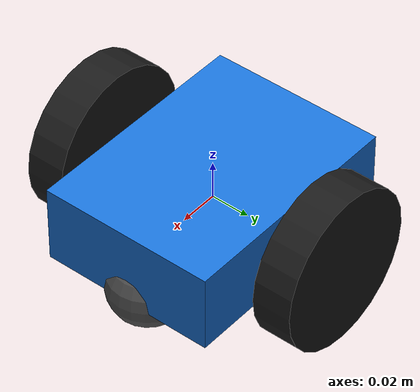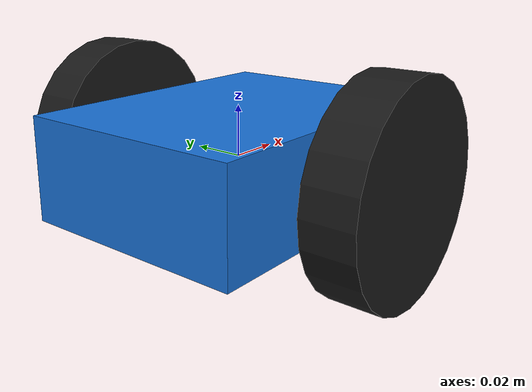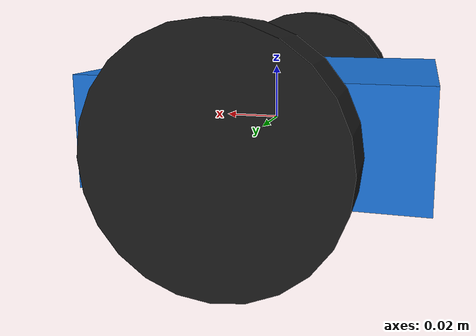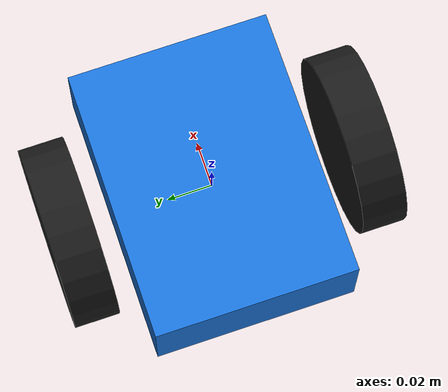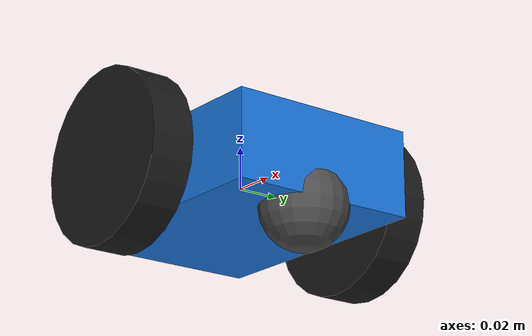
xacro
<?xml version="1.0"?>
<robot name="micromouse" xmlns:xacro="http://www.ros.org/wiki/xacro">

  <!-- A small differential-drive robot sized to fit a 0.30 m maze cell.
       wheel_radius=0.04, wheel_separation=0.13. Spawn at z=0.04 so the
       wheels rest on the ground. -->

  <link name="base_link">
    <visual>
      <geometry><box size="0.12 0.09 0.04"/></geometry>
      <material name="body"><color rgba="0.10 0.45 0.85 1"/></material>
    </visual>
    <collision>
      <geometry><box size="0.12 0.09 0.04"/></geometry>
    </collision>
    <inertial>
      <mass value="0.6"/>
      <inertia ixx="0.000485" ixy="0" ixz="0"
               iyy="0.0008" iyz="0" izz="0.001125"/>
    </inertial>
  </link>

  <!-- left wheel (+y) -->
  <link name="left_wheel">
    <visual>
      <origin rpy="1.5708 0 0" xyz="0 0 0"/>
      <geometry><cylinder length="0.02" radius="0.04"/></geometry>
      <material name="wheel"><color rgba="0.1 0.1 0.1 1"/></material>
    </visual>
    <collision>
      <origin rpy="1.5708 0 0" xyz="0 0 0"/>
      <geometry><cylinder length="0.02" radius="0.04"/></geometry>
    </collision>
    <inertial>
      <mass value="0.05"/>
      <inertia ixx="0.000022" ixy="0" ixz="0"
               iyy="0.00004" iyz="0" izz="0.000022"/>
    </inertial>
  </link>
  <joint name="left_wheel_joint" type="continuous">
    <parent link="base_link"/>
    <child link="left_wheel"/>
    <origin xyz="0 0.065 0" rpy="0 0 0"/>
    <axis xyz="0 1 0"/>
  </joint>

  <!-- right wheel (-y) -->
  <link name="right_wheel">
    <visual>
      <origin rpy="1.5708 0 0" xyz="0 0 0"/>
      <geometry><cylinder length="0.02" radius="0.04"/></geometry>
      <material name="wheel"><color rgba="0.1 0.1 0.1 1"/></material>
    </visual>
    <collision>
      <origin rpy="1.5708 0 0" xyz="0 0 0"/>
      <geometry><cylinder length="0.02" radius="0.04"/></geometry>
    </collision>
    <inertial>
      <mass value="0.05"/>
      <inertia ixx="0.000022" ixy="0" ixz="0"
               iyy="0.00004" iyz="0" izz="0.000022"/>
    </inertial>
  </link>
  <joint name="right_wheel_joint" type="continuous">
    <parent link="base_link"/>
    <child link="right_wheel"/>
    <origin xyz="0 -0.065 0" rpy="0 0 0"/>
    <axis xyz="0 1 0"/>
  </joint>

  <!-- front caster (frictionless ball) -->
  <link name="caster">
    <visual>
      <geometry><sphere radius="0.02"/></geometry>
      <material name="caster"><color rgba="0.3 0.3 0.3 1"/></material>
    </visual>
    <collision>
      <geometry><sphere radius="0.02"/></geometry>
    </collision>
    <inertial>
      <mass value="0.02"/>
      <inertia ixx="0.000003" ixy="0" ixz="0"
               iyy="0.000003" iyz="0" izz="0.000003"/>
    </inertial>
  </link>
  <joint name="caster_joint" type="fixed">
    <parent link="base_link"/>
    <child link="caster"/>
    <origin xyz="0.045 0 -0.02" rpy="0 0 0"/>
  </joint>

  <!-- gz friction: grippy wheels, slippery caster -->
  <gazebo reference="left_wheel">
    <mu1>1.0</mu1><mu2>1.0</mu2>
  </gazebo>
  <gazebo reference="right_wheel">
    <mu1>1.0</mu1><mu2>1.0</mu2>
  </gazebo>
  <gazebo reference="caster">
    <mu1>0.0</mu1><mu2>0.0</mu2>
  </gazebo>

  <!-- gz systems -->
  <gazebo>
    <plugin filename="gz-sim-diff-drive-system"
            name="gz::sim::systems::DiffDrive">
      <left_joint>left_wheel_joint</left_joint>
      <right_joint>right_wheel_joint</right_joint>
      <wheel_separation>0.13</wheel_separation>
      <wheel_radius>0.04</wheel_radius>
      <odom_publish_frequency>50</odom_publish_frequency>
      <topic>/cmd_vel</topic>
      <odom_topic>/odom</odom_topic>
      <tf_topic>/tf</tf_topic>
      <frame_id>odom</frame_id>
      <child_frame_id>base_link</child_frame_id>
      <max_linear_acceleration>3.0</max_linear_acceleration>
      <max_angular_acceleration>6.0</max_angular_acceleration>
    </plugin>

    <plugin filename="gz-sim-joint-state-publisher-system"
            name="gz::sim::systems::JointStatePublisher">
      <topic>/joint_states</topic>
    </plugin>
  </gazebo>

</robot>
